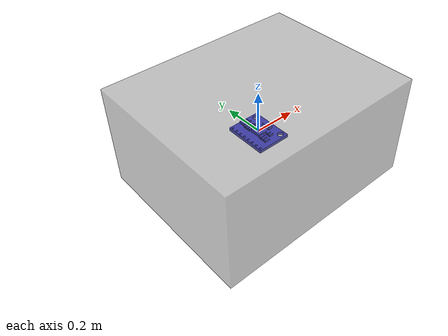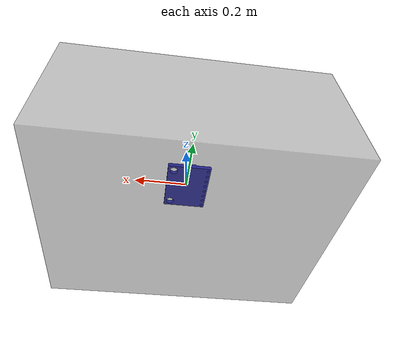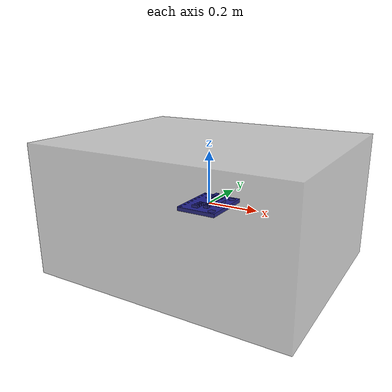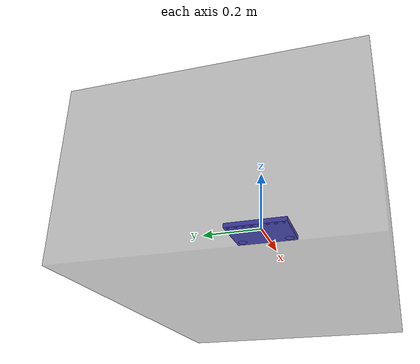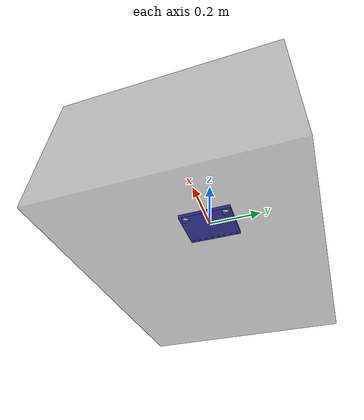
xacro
<?xml version="1.0"?>

<robot name="mpu6050" xmlns:xacro="http://wiki.ros.org/xacro">
  <link name="world"/>

  <link name="imu">
    <visual>
      <origin xyz="0.0 0 0" rpy="0 0 0" />
      <geometry>
        <box size="1 0.8 0.5"/>
      </geometry>
      <material name="black">
        <color rgba="0.5 0.5 0.5  0.5"/>
      </material>
    </visual>
  </link>
  <link name="imu_model">
    <visual>
      <origin xyz="0 0 0" rpy="0 0 0" />
      <geometry>
        <mesh filename="package://mpu6050_ros/meshes/mpu6050/mpu6050.stl" scale="0.01 0.01 0.01"/>
      </geometry>
      <material name="darkblue">
        <color rgba="0 0 0.8 1"/>
      </material>
    </visual>
  </link>
  <joint name="imu_to_imu_model" type="fixed">
    <origin xyz="0 0 0" rpy="0 0 0" />
    <parent link="imu" />
    <child link="imu_model" />
  </joint>

  <joint name="world_to_imu" type="fixed">
    <origin xyz="0 0 0" rpy="0 0 0" />
    <parent link="world" />
    <child link="imu" />
  </joint>
</robot>
